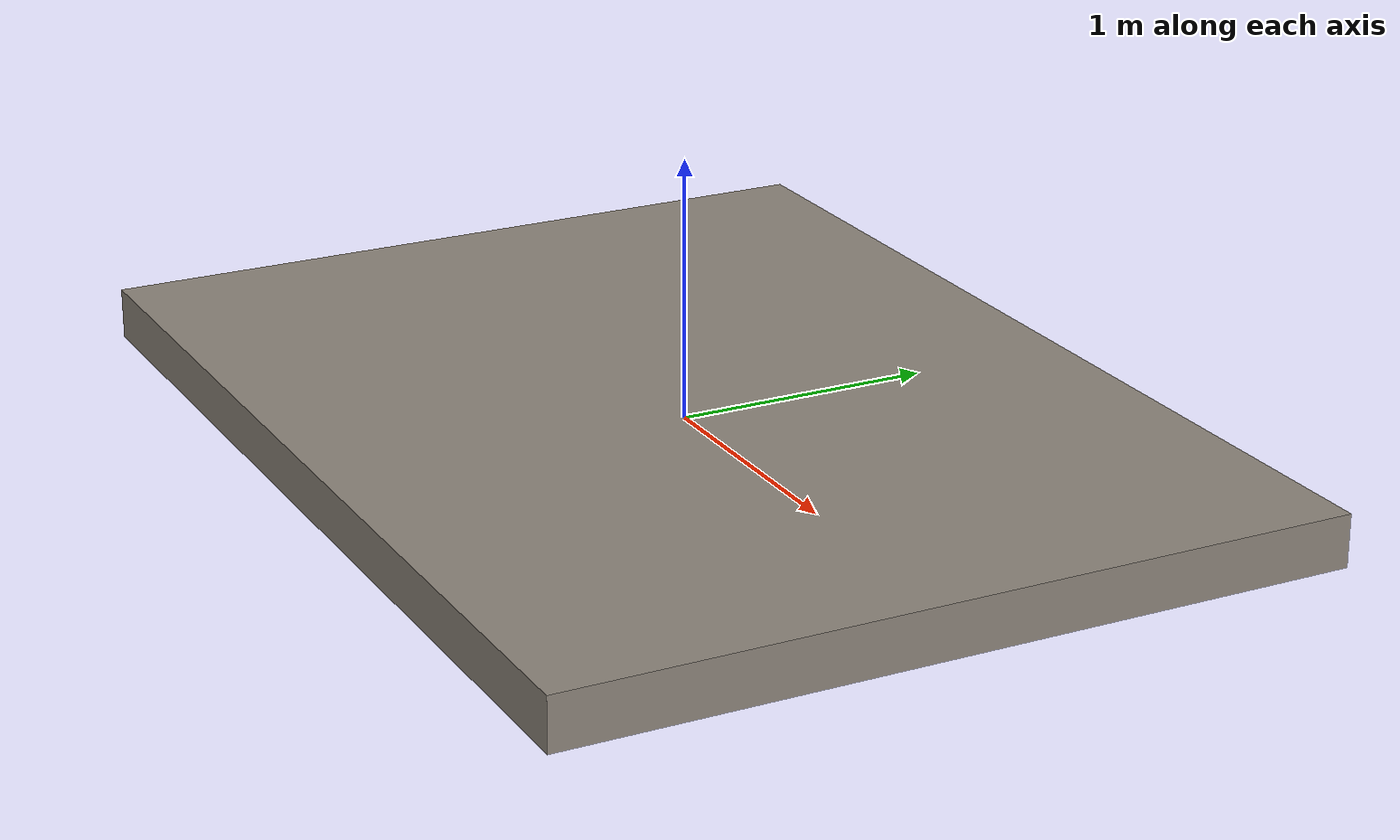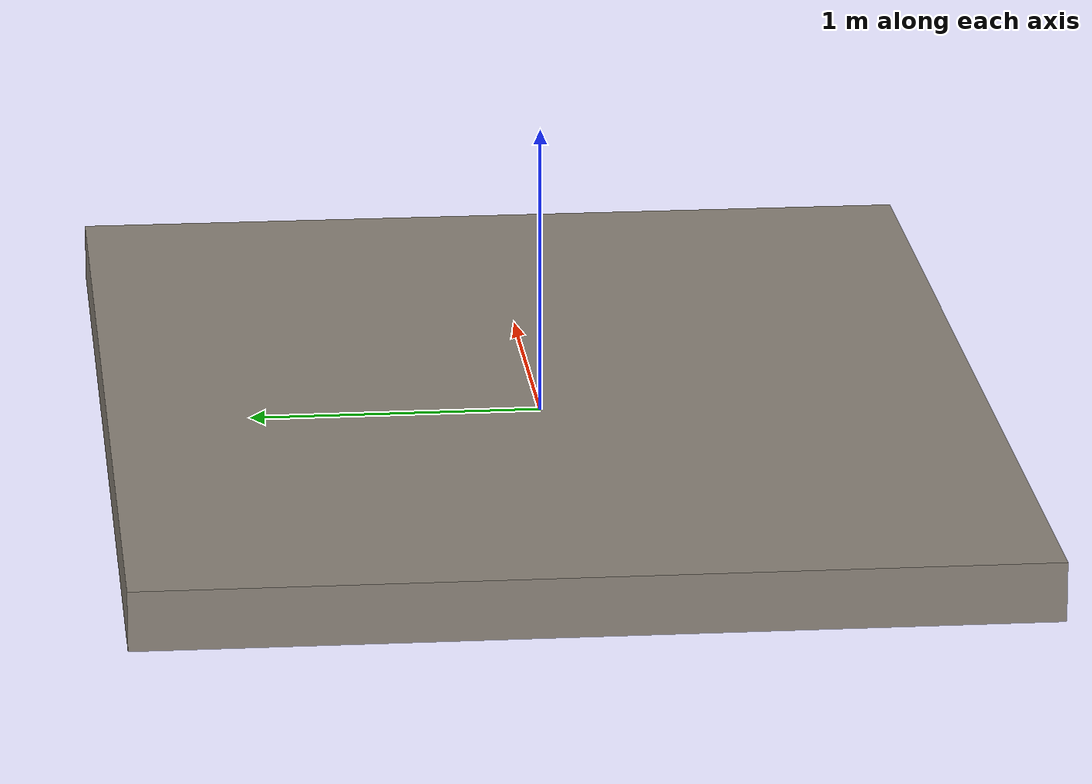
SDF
<?xml version="1.0" ?>
<sdf version="1.6">
  <model name="ramp">
    <pose>0 0 0 0 0 0</pose>
    <link name="ramp_link">
      <pose>0 0 0 0 0 0</pose>
      <inertial>
        <mass>1000000.0</mass>
        <inertia>
          <ixx>753333.3333333333</ixx>
          <ixy>0</ixy>
          <ixz>0</ixz>
          <iyy>1366666.6666666665</iyy>
          <iyz>0</iyz>
          <izz>2113333.333333333</izz>
        </inertia>
      </inertial>
      <collision name="ramp_collision">
        <pose>0 0 0 0 0 0</pose>
        <geometry>
          <box>
            <size>4.044749683231337 3.0 0.2</size>
          </box>
        </geometry>
      </collision>
      <visual name="ramp_visual">
        <pose>0 0 0 0 0 0</pose>
        <geometry>
          <box>
            <size>4.044749683231337 3.0 0.2</size>
          </box>
        </geometry>
        <material>
          <ambient>0.45 0.42 0.38 1.0</ambient>
          <diffuse>0.55 0.52 0.48 1.0</diffuse>
          <specular>0.10 0.10 0.10 1.0</specular>
          <emissive>0.0  0.0  0.0  1.0</emissive>
        </material>
      </visual>
    </link>
  </model>
</sdf>
